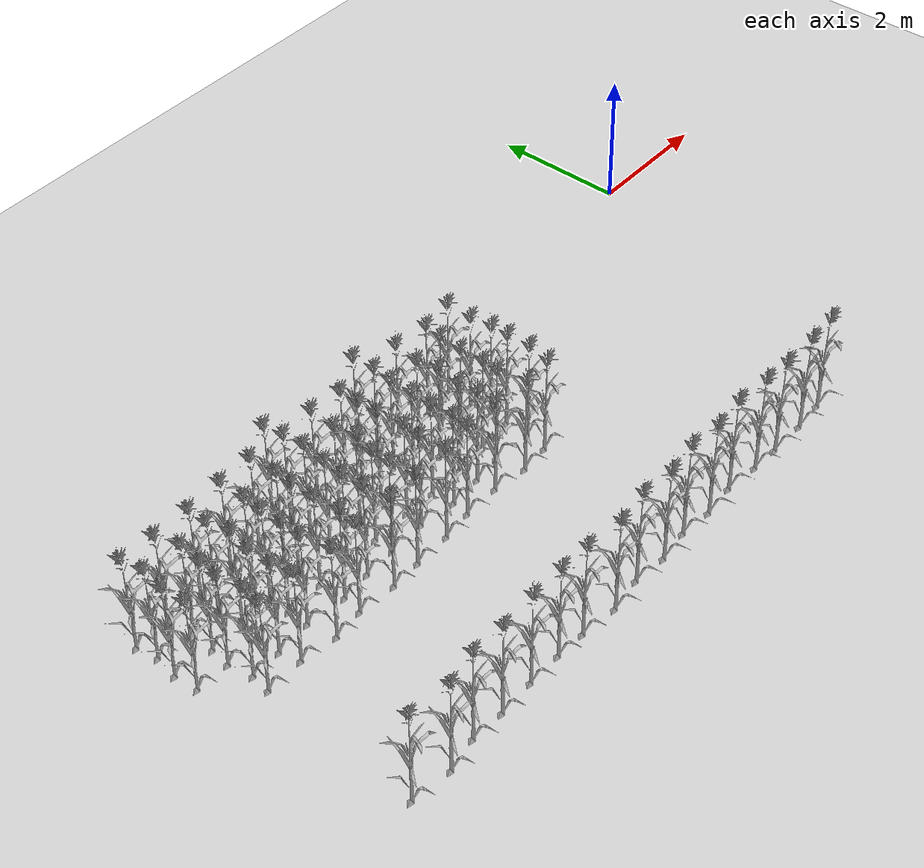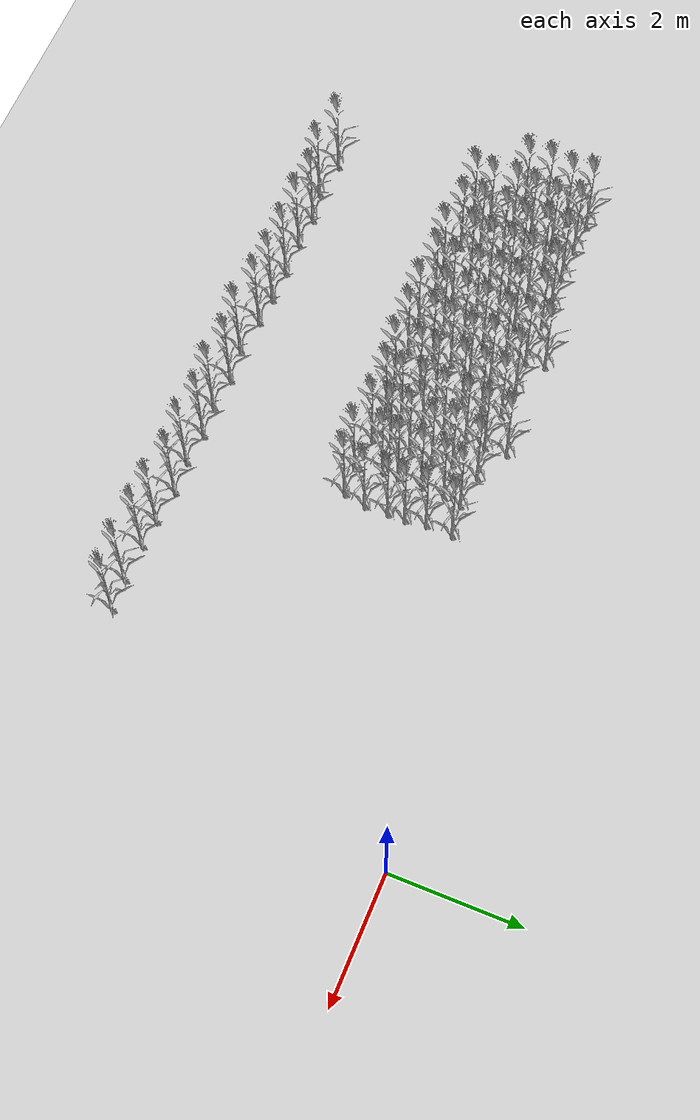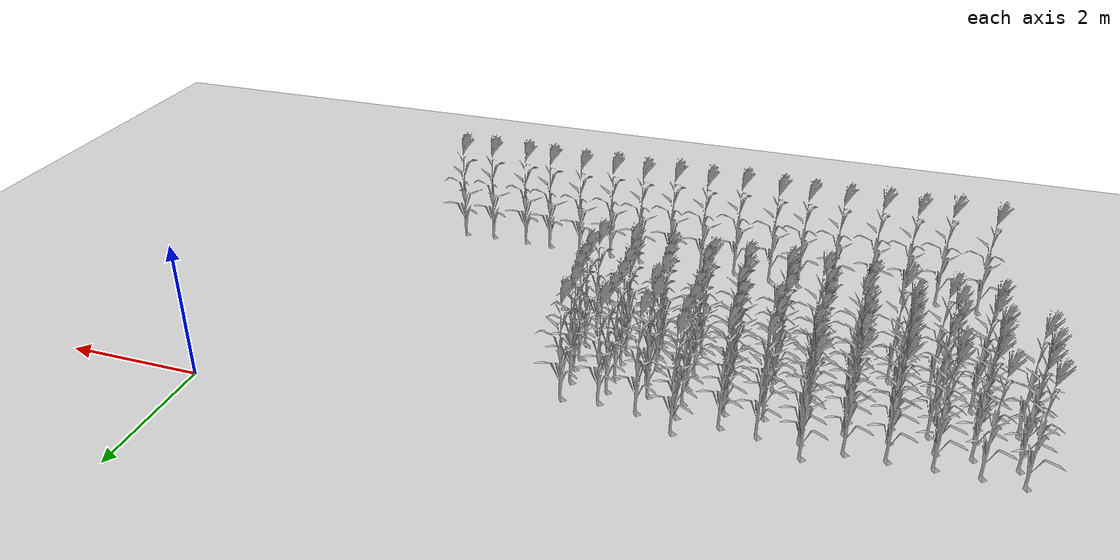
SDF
<sdf version="1.7">
 <world name="farmland_world">
  <model name="ground_plane">
   <static>1</static>
   <link name="link">
    <collision name="collision">
     <geometry><plane><normal>0 0 1</normal><size>40.0 40.0</size></plane></geometry>
     <surface><friction><ode><mu>100</mu><mu2>50</mu2></ode></friction></surface>
    </collision>
    <visual name="visual">
     <cast_shadows>0</cast_shadows>
     <geometry><plane><normal>0 0 1</normal><size>40.0 40.0</size></plane></geometry>
     <material>
      <script><uri>file://media/materials/scripts/gazebo.material</uri><name>Gazebo/Grey</name></script>
     </material>
    </visual>
   </link>
  </model>
  <model name="tree_3_2425">
   <static>1</static>
   <link name="link">
    <collision name="collision">
     <geometry><mesh><uri>model://Corn_low_poly/corn.obj</uri><scale>1 1 1</scale></mesh></geometry>
     <surface><friction><ode><mu>100</mu><mu2>50</mu2></ode></friction></surface>
    </collision>
    <visual name="visual">
     <geometry><mesh><uri>model://Corn_low_poly/corn.obj</uri><scale>1 1 1</scale></mesh></geometry>
    </visual>
   </link>
   <pose>-2.0586083341390737 -5.009973248332785 0 0 0 0</pose>
  </model>
  <model name="tree_3_2426">
   <static>1</static>
   <link name="link">
    <collision name="collision">
     <geometry><mesh><uri>model://Corn_low_poly/corn.obj</uri><scale>1 1 1</scale></mesh></geometry>
     <surface><friction><ode><mu>100</mu><mu2>50</mu2></ode></friction></surface>
    </collision>
    <visual name="visual">
     <geometry><mesh><uri>model://Corn_low_poly/corn.obj</uri><scale>1 1 1</scale></mesh></geometry>
    </visual>
   </link>
   <pose>-2.550739837157922 -5.044490293046341 0 0 0 0</pose>
  </model>
  <model name="tree_3_2427">
   <static>1</static>
   <link name="link">
    <collision name="collision">
     <geometry><mesh><uri>model://Corn_low_poly/corn.obj</uri><scale>1 1 1</scale></mesh></geometry>
     <surface><friction><ode><mu>100</mu><mu2>50</mu2></ode></friction></surface>
    </collision>
    <visual name="visual">
     <geometry><mesh><uri>model://Corn_low_poly/corn.obj</uri><scale>1 1 1</scale></mesh></geometry>
    </visual>
   </link>
   <pose>-3.1340845851057533 -5.038123824042474 0 0 0 0</pose>
  </model>
  <model name="tree_3_2428">
   <static>1</static>
   <link name="link">
    <collision name="collision">
     <geometry><mesh><uri>model://Corn_low_poly/corn.obj</uri><scale>1 1 1</scale></mesh></geometry>
     <surface><friction><ode><mu>100</mu><mu2>50</mu2></ode></friction></surface>
    </collision>
    <visual name="visual">
     <geometry><mesh><uri>model://Corn_low_poly/corn.obj</uri><scale>1 1 1</scale></mesh></geometry>
    </visual>
   </link>
   <pose>-3.5695222279849346 -5.016342844451209 0 0 0 0</pose>
  </model>
  <model name="tree_3_2429">
   <static>1</static>
   <link name="link">
    <collision name="collision">
     <geometry><mesh><uri>model://Corn_low_poly/corn.obj</uri><scale>1 1 1</scale></mesh></geometry>
     <surface><friction><ode><mu>100</mu><mu2>50</mu2></ode></friction></surface>
    </collision>
    <visual name="visual">
     <geometry><mesh><uri>model://Corn_low_poly/corn.obj</uri><scale>1 1 1</scale></mesh></geometry>
    </visual>
   </link>
   <pose>-4.105702485200127 -4.963977817209397 0 0 0 0</pose>
  </model>
  <model name="tree_3_2430">
   <static>1</static>
   <link name="link">
    <collision name="collision">
     <geometry><mesh><uri>model://Corn_low_poly/corn.obj</uri><scale>1 1 1</scale></mesh></geometry>
     <surface><friction><ode><mu>100</mu><mu2>50</mu2></ode></friction></surface>
    </collision>
    <visual name="visual">
     <geometry><mesh><uri>model://Corn_low_poly/corn.obj</uri><scale>1 1 1</scale></mesh></geometry>
    </visual>
   </link>
   <pose>-4.622667481711964 -5.010505086651507 0 0 0 0</pose>
  </model>
  <model name="tree_3_2431">
   <static>1</static>
   <link name="link">
    <collision name="collision">
     <geometry><mesh><uri>model://Corn_low_poly/corn.obj</uri><scale>1 1 1</scale></mesh></geometry>
     <surface><friction><ode><mu>100</mu><mu2>50</mu2></ode></friction></surface>
    </collision>
    <visual name="visual">
     <geometry><mesh><uri>model://Corn_low_poly/corn.obj</uri><scale>1 1 1</scale></mesh></geometry>
    </visual>
   </link>
   <pose>-5.124314284129708 -4.962499176442999 0 0 0 0</pose>
  </model>
  <model name="tree_3_2432">
   <static>1</static>
   <link name="link">
    <collision name="collision">
     <geometry><mesh><uri>model://Corn_low_poly/corn.obj</uri><scale>1 1 1</scale></mesh></geometry>
     <surface><friction><ode><mu>100</mu><mu2>50</mu2></ode></friction></surface>
    </collision>
    <visual name="visual">
     <geometry><mesh><uri>model://Corn_low_poly/corn.obj</uri><scale>1 1 1</scale></mesh></geometry>
    </visual>
   </link>
   <pose>-5.623227794631505 -5.022125303199364 0 0 0 0</pose>
  </model>
  <model name="tree_3_2433">
   <static>1</static>
   <link name="link">
    <collision name="collision">
     <geometry><mesh><uri>model://Corn_low_poly/corn.obj</uri><scale>1 1 1</scale></mesh></geometry>
     <surface><friction><ode><mu>100</mu><mu2>50</mu2></ode></friction></surface>
    </collision>
    <visual name="visual">
     <geometry><mesh><uri>model://Corn_low_poly/corn.obj</uri><scale>1 1 1</scale></mesh></geometry>
    </visual>
   </link>
   <pose>-6.141115361987646 -4.9750477683864895 0 0 0 0</pose>
  </model>
  <model name="tree_3_2434">
   <static>1</static>
   <link name="link">
    <collision name="collision">
     <geometry><mesh><uri>model://Corn_low_poly/corn.obj</uri><scale>1 1 1</scale></mesh></geometry>
     <surface><friction><ode><mu>100</mu><mu2>50</mu2></ode></friction></surface>
    </collision>
    <visual name="visual">
     <geometry><mesh><uri>model://Corn_low_poly/corn.obj</uri><scale>1 1 1</scale></mesh></geometry>
    </visual>
   </link>
   <pose>-6.669033276805173 -5.045881735833518 0 0 0 0</pose>
  </model>
  <model name="tree_3_2435">
   <static>1</static>
   <link name="link">
    <collision name="collision">
     <geometry><mesh><uri>model://Corn_low_poly/corn.obj</uri><scale>1 1 1</scale></mesh></geometry>
     <surface><friction><ode><mu>100</mu><mu2>50</mu2></ode></friction></surface>
    </collision>
    <visual name="visual">
     <geometry><mesh><uri>model://Corn_low_poly/corn.obj</uri><scale>1 1 1</scale></mesh></geometry>
    </visual>
   </link>
   <pose>-7.2357211204786465 -4.98104925834356 0 0 0 0</pose>
  </model>
  <model name="tree_3_2436">
   <static>1</static>
   <link name="link">
    <collision name="collision">
     <geometry><mesh><uri>model://Corn_low_poly/corn.obj</uri><scale>1 1 1</scale></mesh></geometry>
     <surface><friction><ode><mu>100</mu><mu2>50</mu2></ode></friction></surface>
    </collision>
    <visual name="visual">
     <geometry><mesh><uri>model://Corn_low_poly/corn.obj</uri><scale>1 1 1</scale></mesh></geometry>
    </visual>
   </link>
   <pose>-7.685568026569608 -4.957009878048248 0 0 0 0</pose>
  </model>
  <model name="tree_3_2437">
   <static>1</static>
   <link name="link">
    <collision name="collision">
     <geometry><mesh><uri>model://Corn_low_poly/corn.obj</uri><scale>1 1 1</scale></mesh></geometry>
     <surface><friction><ode><mu>100</mu><mu2>50</mu2></ode></friction></surface>
    </collision>
    <visual name="visual">
     <geometry><mesh><uri>model://Corn_low_poly/corn.obj</uri><scale>1 1 1</scale></mesh></geometry>
    </visual>
   </link>
   <pose>-8.206897508239647 -4.957161551358059 0 0 0 0</pose>
  </model>
  <model name="tree_3_2438">
   <static>1</static>
   <link name="link">
    <collision name="collision">
     <geometry><mesh><uri>model://Corn_low_poly/corn.obj</uri><scale>1 1 1</scale></mesh></geometry>
     <surface><friction><ode><mu>100</mu><mu2>50</mu2></ode></friction></surface>
    </collision>
    <visual name="visual">
     <geometry><mesh><uri>model://Corn_low_poly/corn.obj</uri><scale>1 1 1</scale></mesh></geometry>
    </visual>
   </link>
   <pose>-8.766601097878594 -4.977420156103931 0 0 0 0</pose>
  </model>
  <model name="tree_3_2439">
   <static>1</static>
   <link name="link">
    <collision name="collision">
     <geometry><mesh><uri>model://Corn_low_poly/corn.obj</uri><scale>1 1 1</scale></mesh></geometry>
     <surface><friction><ode><mu>100</mu><mu2>50</mu2></ode></friction></surface>
    </collision>
    <visual name="visual">
     <geometry><mesh><uri>model://Corn_low_poly/corn.obj</uri><scale>1 1 1</scale></mesh></geometry>
    </visual>
   </link>
   <pose>-9.262621262175138 -4.950004499388829 0 0 0 0</pose>
  </model>
  <model name="tree_3_2440">
   <static>1</static>
   <link name="link">
    <collision name="collision">
     <geometry><mesh><uri>model://Corn_low_poly/corn.obj</uri><scale>1 1 1</scale></mesh></geometry>
     <surface><friction><ode><mu>100</mu><mu2>50</mu2></ode></friction></surface>
    </collision>
    <visual name="visual">
     <geometry><mesh><uri>model://Corn_low_poly/corn.obj</uri><scale>1 1 1</scale></mesh></geometry>
    </visual>
   </link>
   <pose>-9.75364221327253 -5.04084159694156 0 0 0 0</pose>
  </model>
  <model name="tree_3_2441">
   <static>1</static>
   <link name="link">
    <collision name="collision">
     <geometry><mesh><uri>model://Corn_low_poly/corn.obj</uri><scale>1 1 1</scale></mesh></geometry>
     <surface><friction><ode><mu>100</mu><mu2>50</mu2></ode></friction></surface>
    </collision>
    <visual name="visual">
     <geometry><mesh><uri>model://Corn_low_poly/corn.obj</uri><scale>1 1 1</scale></mesh></geometry>
    </visual>
   </link>
   <pose>-10.34857824971049 -4.965488616825844 0 0 0 0</pose>
  </model>
  <model name="tree_3_2523">
   <static>1</static>
   <link name="link">
    <collision name="collision">
     <geometry><mesh><uri>model://Corn_low_poly/corn.obj</uri><scale>1 1 1</scale></mesh></geometry>
     <surface><friction><ode><mu>100</mu><mu2>50</mu2></ode></friction></surface>
    </collision>
    <visual name="visual">
     <geometry><mesh><uri>model://Corn_low_poly/corn.obj</uri><scale>1 1 1</scale></mesh></geometry>
    </visual>
   </link>
   <pose>-4.960950353666798 -1.9587976539364507 0 0 0 0</pose>
  </model>
  <model name="tree_3_2524">
   <static>1</static>
   <link name="link">
    <collision name="collision">
     <geometry><mesh><uri>model://Corn_low_poly/corn.obj</uri><scale>1 1 1</scale></mesh></geometry>
     <surface><friction><ode><mu>100</mu><mu2>50</mu2></ode></friction></surface>
    </collision>
    <visual name="visual">
     <geometry><mesh><uri>model://Corn_low_poly/corn.obj</uri><scale>1 1 1</scale></mesh></geometry>
    </visual>
   </link>
   <pose>-5.548777936164147 -2.031735033913933 0 0 0 0</pose>
  </model>
  <model name="tree_3_2525">
   <static>1</static>
   <link name="link">
    <collision name="collision">
     <geometry><mesh><uri>model://Corn_low_poly/corn.obj</uri><scale>1 1 1</scale></mesh></geometry>
     <surface><friction><ode><mu>100</mu><mu2>50</mu2></ode></friction></surface>
    </collision>
    <visual name="visual">
     <geometry><mesh><uri>model://Corn_low_poly/corn.obj</uri><scale>1 1 1</scale></mesh></geometry>
    </visual>
   </link>
   <pose>-6.053101093138669 -2.0475938958156243 0 0 0 0</pose>
  </model>
  <model name="tree_3_2526">
   <static>1</static>
   <link name="link">
    <collision name="collision">
     <geometry><mesh><uri>model://Corn_low_poly/corn.obj</uri><scale>1 1 1</scale></mesh></geometry>
     <surface><friction><ode><mu>100</mu><mu2>50</mu2></ode></friction></surface>
    </collision>
    <visual name="visual">
     <geometry><mesh><uri>model://Corn_low_poly/corn.obj</uri><scale>1 1 1</scale></mesh></geometry>
    </visual>
   </link>
   <pose>-6.581430613360766 -2.045547408359108 0 0 0 0</pose>
  </model>
  <model name="tree_3_2527">
   <static>1</static>
   <link name="link">
    <collision name="collision">
     <geometry><mesh><uri>model://Corn_low_poly/corn.obj</uri><scale>1 1 1</scale></mesh></geometry>
     <surface><friction><ode><mu>100</mu><mu2>50</mu2></ode></friction></surface>
    </collision>
    <visual name="visual">
     <geometry><mesh><uri>model://Corn_low_poly/corn.obj</uri><scale>1 1 1</scale></mesh></geometry>
    </visual>
   </link>
   <pose>-7.054353891102654 -2.019451760619216 0 0 0 0</pose>
  </model>
  <model name="tree_3_2528">
   <static>1</static>
   <link name="link">
    <collision name="collision">
     <geometry><mesh><uri>model://Corn_low_poly/corn.obj</uri><scale>1 1 1</scale></mesh></geometry>
     <surface><friction><ode><mu>100</mu><mu2>50</mu2></ode></friction></surface>
    </collision>
    <visual name="visual">
     <geometry><mesh><uri>model://Corn_low_poly/corn.obj</uri><scale>1 1 1</scale></mesh></geometry>
    </visual>
   </link>
   <pose>-7.650708832056682 -2.0178914827171517 0 0 0 0</pose>
  </model>
  <model name="tree_3_2529">
   <static>1</static>
   <link name="link">
    <collision name="collision">
     <geometry><mesh><uri>model://Corn_low_poly/corn.obj</uri><scale>1 1 1</scale></mesh></geometry>
     <surface><friction><ode><mu>100</mu><mu2>50</mu2></ode></friction></surface>
    </collision>
    <visual name="visual">
     <geometry><mesh><uri>model://Corn_low_poly/corn.obj</uri><scale>1 1 1</scale></mesh></geometry>
    </visual>
   </link>
   <pose>-8.158249538920707 -2.000505995676929 0 0 0 0</pose>
  </model>
  <model name="tree_3_2530">
   <static>1</static>
   <link name="link">
    <collision name="collision">
     <geometry><mesh><uri>model://Corn_low_poly/corn.obj</uri><scale>1 1 1</scale></mesh></geometry>
     <surface><friction><ode><mu>100</mu><mu2>50</mu2></ode></friction></surface>
    </collision>
    <visual name="visual">
     <geometry><mesh><uri>model://Corn_low_poly/corn.obj</uri><scale>1 1 1</scale></mesh></geometry>
    </visual>
   </link>
   <pose>-8.643395161052773 -1.9892140511070144 0 0 0 0</pose>
  </model>
  <model name="tree_3_2531">
   <static>1</static>
   <link name="link">
    <collision name="collision">
     <geometry><mesh><uri>model://Corn_low_poly/corn.obj</uri><scale>1 1 1</scale></mesh></geometry>
     <surface><friction><ode><mu>100</mu><mu2>50</mu2></ode></friction></surface>
    </collision>
    <visual name="visual">
     <geometry><mesh><uri>model://Corn_low_poly/corn.obj</uri><scale>1 1 1</scale></mesh></geometry>
    </visual>
   </link>
   <pose>-9.20108240498187 -1.9896631378876373 0 0 0 0</pose>
  </model>
  <model name="tree_3_2532">
   <static>1</static>
   <link name="link">
    <collision name="collision">
     <geometry><mesh><uri>model://Corn_low_poly/corn.obj</uri><scale>1 1 1</scale></mesh></geometry>
     <surface><friction><ode><mu>100</mu><mu2>50</mu2></ode></friction></surface>
    </collision>
    <visual name="visual">
     <geometry><mesh><uri>model://Corn_low_poly/corn.obj</uri><scale>1 1 1</scale></mesh></geometry>
    </visual>
   </link>
   <pose>-9.74475144455013 -1.9763483331833869 0 0 0 0</pose>
  </model>
  <model name="tree_3_2533">
   <static>1</static>
   <link name="link">
    <collision name="collision">
     <geometry><mesh><uri>model://Corn_low_poly/corn.obj</uri><scale>1 1 1</scale></mesh></geometry>
     <surface><friction><ode><mu>100</mu><mu2>50</mu2></ode></friction></surface>
    </collision>
    <visual name="visual">
     <geometry><mesh><uri>model://Corn_low_poly/corn.obj</uri><scale>1 1 1</scale></mesh></geometry>
    </visual>
   </link>
   <pose>-10.24988282463306 -1.9978741963152848 0 0 0 0</pose>
  </model>
  <model name="tree_3_2534">
   <static>1</static>
   <link name="link">
    <collision name="collision">
     <geometry><mesh><uri>model://Corn_low_poly/corn.obj</uri><scale>1 1 1</scale></mesh></geometry>
     <surface><friction><ode><mu>100</mu><mu2>50</mu2></ode></friction></surface>
    </collision>
    <visual name="visual">
     <geometry><mesh><uri>model://Corn_low_poly/corn.obj</uri><scale>1 1 1</scale></mesh></geometry>
    </visual>
   </link>
   <pose>-10.741355738978129 -1.9862273547312324 0 0 0 0</pose>
  </model>
  <model name="tree_3_2547">
   <static>1</static>
   <link name="link">
    <collision name="collision">
     <geometry><mesh><uri>model://Corn_low_poly/corn.obj</uri><scale>1 1 1</scale></mesh></geometry>
     <surface><friction><ode><mu>100</mu><mu2>50</mu2></ode></friction></surface>
    </collision>
    <visual name="visual">
     <geometry><mesh><uri>model://Corn_low_poly/corn.obj</uri><scale>1 1 1</scale></mesh></geometry>
    </visual>
   </link>
   <pose>-4.952897624842829 -2.316686795193839 0 0 0 0</pose>
  </model>
  <model name="tree_3_2548">
   <static>1</static>
   <link name="link">
    <collision name="collision">
     <geometry><mesh><uri>model://Corn_low_poly/corn.obj</uri><scale>1 1 1</scale></mesh></geometry>
     <surface><friction><ode><mu>100</mu><mu2>50</mu2></ode></friction></surface>
    </collision>
    <visual name="visual">
     <geometry><mesh><uri>model://Corn_low_poly/corn.obj</uri><scale>1 1 1</scale></mesh></geometry>
    </visual>
   </link>
   <pose>-5.566438396290747 -2.281230973018388 0 0 0 0</pose>
  </model>
  <model name="tree_3_2549">
   <static>1</static>
   <link name="link">
    <collision name="collision">
     <geometry><mesh><uri>model://Corn_low_poly/corn.obj</uri><scale>1 1 1</scale></mesh></geometry>
     <surface><friction><ode><mu>100</mu><mu2>50</mu2></ode></friction></surface>
    </collision>
    <visual name="visual">
     <geometry><mesh><uri>model://Corn_low_poly/corn.obj</uri><scale>1 1 1</scale></mesh></geometry>
    </visual>
   </link>
   <pose>-6.026618917587025 -2.3371508855942973 0 0 0 0</pose>
  </model>
  <model name="tree_3_2550">
   <static>1</static>
   <link name="link">
    <collision name="collision">
     <geometry><mesh><uri>model://Corn_low_poly/corn.obj</uri><scale>1 1 1</scale></mesh></geometry>
     <surface><friction><ode><mu>100</mu><mu2>50</mu2></ode></friction></surface>
    </collision>
    <visual name="visual">
     <geometry><mesh><uri>model://Corn_low_poly/corn.obj</uri><scale>1 1 1</scale></mesh></geometry>
    </visual>
   </link>
   <pose>-6.5408133101072945 -2.3704663006805 0 0 0 0</pose>
  </model>
  <model name="tree_3_2551">
   <static>1</static>
   <link name="link">
    <collision name="collision">
     <geometry><mesh><uri>model://Corn_low_poly/corn.obj</uri><scale>1 1 1</scale></mesh></geometry>
     <surface><friction><ode><mu>100</mu><mu2>50</mu2></ode></friction></surface>
    </collision>
    <visual name="visual">
     <geometry><mesh><uri>model://Corn_low_poly/corn.obj</uri><scale>1 1 1</scale></mesh></geometry>
    </visual>
   </link>
   <pose>-7.091961716748856 -2.294462835553418 0 0 0 0</pose>
  </model>
  <model name="tree_3_2552">
   <static>1</static>
   <link name="link">
    <collision name="collision">
     <geometry><mesh><uri>model://Corn_low_poly/corn.obj</uri><scale>1 1 1</scale></mesh></geometry>
     <surface><friction><ode><mu>100</mu><mu2>50</mu2></ode></friction></surface>
    </collision>
    <visual name="visual">
     <geometry><mesh><uri>model://Corn_low_poly/corn.obj</uri><scale>1 1 1</scale></mesh></geometry>
    </visual>
   </link>
   <pose>-7.657045072648217 -2.30859769597718 0 0 0 0</pose>
  </model>
  <model name="tree_3_2553">
   <static>1</static>
   <link name="link">
    <collision name="collision">
     <geometry><mesh><uri>model://Corn_low_poly/corn.obj</uri><scale>1 1 1</scale></mesh></geometry>
     <surface><friction><ode><mu>100</mu><mu2>50</mu2></ode></friction></surface>
    </collision>
    <visual name="visual">
     <geometry><mesh><uri>model://Corn_low_poly/corn.obj</uri><scale>1 1 1</scale></mesh></geometry>
    </visual>
   </link>
   <pose>-8.14824796701651 -2.326916446904539 0 0 0 0</pose>
  </model>
  <model name="tree_3_2554">
   <static>1</static>
   <link name="link">
    <collision name="collision">
     <geometry><mesh><uri>model://Corn_low_poly/corn.obj</uri><scale>1 1 1</scale></mesh></geometry>
     <surface><friction><ode><mu>100</mu><mu2>50</mu2></ode></friction></surface>
    </collision>
    <visual name="visual">
     <geometry><mesh><uri>model://Corn_low_poly/corn.obj</uri><scale>1 1 1</scale></mesh></geometry>
    </visual>
   </link>
   <pose>-8.607910578088973 -2.3696579351749274 0 0 0 0</pose>
  </model>
  <model name="tree_3_2555">
   <static>1</static>
   <link name="link">
    <collision name="collision">
     <geometry><mesh><uri>model://Corn_low_poly/corn.obj</uri><scale>1 1 1</scale></mesh></geometry>
     <surface><friction><ode><mu>100</mu><mu2>50</mu2></ode></friction></surface>
    </collision>
    <visual name="visual">
     <geometry><mesh><uri>model://Corn_low_poly/corn.obj</uri><scale>1 1 1</scale></mesh></geometry>
    </visual>
   </link>
   <pose>-9.202013834442612 -2.3009044187210947 0 0 0 0</pose>
  </model>
  <model name="tree_3_2556">
   <static>1</static>
   <link name="link">
    <collision name="collision">
     <geometry><mesh><uri>model://Corn_low_poly/corn.obj</uri><scale>1 1 1</scale></mesh></geometry>
     <surface><friction><ode><mu>100</mu><mu2>50</mu2></ode></friction></surface>
    </collision>
    <visual name="visual">
     <geometry><mesh><uri>model://Corn_low_poly/corn.obj</uri><scale>1 1 1</scale></mesh></geometry>
    </visual>
   </link>
   <pose>-9.735195246907894 -2.341943309348881 0 0 0 0</pose>
  </model>
  <model name="tree_3_2557">
   <static>1</static>
   <link name="link">
    <collision name="collision">
     <geometry><mesh><uri>model://Corn_low_poly/corn.obj</uri><scale>1 1 1</scale></mesh></geometry>
     <surface><friction><ode><mu>100</mu><mu2>50</mu2></ode></friction></surface>
    </collision>
    <visual name="visual">
     <geometry><mesh><uri>model://Corn_low_poly/corn.obj</uri><scale>1 1 1</scale></mesh></geometry>
    </visual>
   </link>
   <pose>-10.184889660994019 -2.3541168249147004 0 0 0 0</pose>
  </model>
  <model name="tree_3_2571">
   <static>1</static>
   <link name="link">
    <collision name="collision">
     <geometry><mesh><uri>model://Corn_low_poly/corn.obj</uri><scale>1 1 1</scale></mesh></geometry>
     <surface><friction><ode><mu>100</mu><mu2>50</mu2></ode></friction></surface>
    </collision>
    <visual name="visual">
     <geometry><mesh><uri>model://Corn_low_poly/corn.obj</uri><scale>1 1 1</scale></mesh></geometry>
    </visual>
   </link>
   <pose>-5.0273144611647345 -2.6596482863517323 0 0 0 0</pose>
  </model>
  <model name="tree_3_2572">
   <static>1</static>
   <link name="link">
    <collision name="collision">
     <geometry><mesh><uri>model://Corn_low_poly/corn.obj</uri><scale>1 1 1</scale></mesh></geometry>
     <surface><friction><ode><mu>100</mu><mu2>50</mu2></ode></friction></surface>
    </collision>
    <visual name="visual">
     <geometry><mesh><uri>model://Corn_low_poly/corn.obj</uri><scale>1 1 1</scale></mesh></geometry>
    </visual>
   </link>
   <pose>-5.483562302171038 -2.6932047045574854 0 0 0 0</pose>
  </model>
  <model name="tree_3_2573">
   <static>1</static>
   <link name="link">
    <collision name="collision">
     <geometry><mesh><uri>model://Corn_low_poly/corn.obj</uri><scale>1 1 1</scale></mesh></geometry>
     <surface><friction><ode><mu>100</mu><mu2>50</mu2></ode></friction></surface>
    </collision>
    <visual name="visual">
     <geometry><mesh><uri>model://Corn_low_poly/corn.obj</uri><scale>1 1 1</scale></mesh></geometry>
    </visual>
   </link>
   <pose>-6.012930459471779 -2.6255402716753133 0 0 0 0</pose>
  </model>
  <model name="tree_3_2574">
   <static>1</static>
   <link name="link">
    <collision name="collision">
     <geometry><mesh><uri>model://Corn_low_poly/corn.obj</uri><scale>1 1 1</scale></mesh></geometry>
     <surface><friction><ode><mu>100</mu><mu2>50</mu2></ode></friction></surface>
    </collision>
    <visual name="visual">
     <geometry><mesh><uri>model://Corn_low_poly/corn.obj</uri><scale>1 1 1</scale></mesh></geometry>
    </visual>
   </link>
   <pose>-6.576452443210215 -2.6302314381833365 0 0 0 0</pose>
  </model>
  <model name="tree_3_2575">
   <static>1</static>
   <link name="link">
    <collision name="collision">
     <geometry><mesh><uri>model://Corn_low_poly/corn.obj</uri><scale>1 1 1</scale></mesh></geometry>
     <surface><friction><ode><mu>100</mu><mu2>50</mu2></ode></friction></surface>
    </collision>
    <visual name="visual">
     <geometry><mesh><uri>model://Corn_low_poly/corn.obj</uri><scale>1 1 1</scale></mesh></geometry>
    </visual>
   </link>
   <pose>-7.047648939084872 -2.680665682531481 0 0 0 0</pose>
  </model>
  <model name="tree_3_2576">
   <static>1</static>
   <link name="link">
    <collision name="collision">
     <geometry><mesh><uri>model://Corn_low_poly/corn.obj</uri><scale>1 1 1</scale></mesh></geometry>
     <surface><friction><ode><mu>100</mu><mu2>50</mu2></ode></friction></surface>
    </collision>
    <visual name="visual">
     <geometry><mesh><uri>model://Corn_low_poly/corn.obj</uri><scale>1 1 1</scale></mesh></geometry>
    </visual>
   </link>
   <pose>-7.616321076765599 -2.691679288064732 0 0 0 0</pose>
  </model>
  <model name="tree_3_2577">
   <static>1</static>
   <link name="link">
    <collision name="collision">
     <geometry><mesh><uri>model://Corn_low_poly/corn.obj</uri><scale>1 1 1</scale></mesh></geometry>
     <surface><friction><ode><mu>100</mu><mu2>50</mu2></ode></friction></surface>
    </collision>
    <visual name="visual">
     <geometry><mesh><uri>model://Corn_low_poly/corn.obj</uri><scale>1 1 1</scale></mesh></geometry>
    </visual>
   </link>
   <pose>-8.082744238580535 -2.711324277870261 0 0 0 0</pose>
  </model>
  <model name="tree_3_2578">
   <static>1</static>
   <link name="link">
    <collision name="collision">
     <geometry><mesh><uri>model://Corn_low_poly/corn.obj</uri><scale>1 1 1</scale></mesh></geometry>
     <surface><friction><ode><mu>100</mu><mu2>50</mu2></ode></friction></surface>
    </collision>
    <visual name="visual">
     <geometry><mesh><uri>model://Corn_low_poly/corn.obj</uri><scale>1 1 1</scale></mesh></geometry>
    </visual>
   </link>
   <pose>-8.660539599678712 -2.6645110194438897 0 0 0 0</pose>
  </model>
  <model name="tree_3_2579">
   <static>1</static>
   <link name="link">
    <collision name="collision">
     <geometry><mesh><uri>model://Corn_low_poly/corn.obj</uri><scale>1 1 1</scale></mesh></geometry>
     <surface><friction><ode><mu>100</mu><mu2>50</mu2></ode></friction></surface>
    </collision>
    <visual name="visual">
     <geometry><mesh><uri>model://Corn_low_poly/corn.obj</uri><scale>1 1 1</scale></mesh></geometry>
    </visual>
   </link>
   <pose>-9.12596622578183 -2.7148125497555085 0 0 0 0</pose>
  </model>
  <model name="tree_3_2580">
   <static>1</static>
   <link name="link">
    <collision name="collision">
     <geometry><mesh><uri>model://Corn_low_poly/corn.obj</uri><scale>1 1 1</scale></mesh></geometry>
     <surface><friction><ode><mu>100</mu><mu2>50</mu2></ode></friction></surface>
    </collision>
    <visual name="visual">
     <geometry><mesh><uri>model://Corn_low_poly/corn.obj</uri><scale>1 1 1</scale></mesh></geometry>
    </visual>
   </link>
   <pose>-9.665086920132678 -2.634204420921476 0 0 0 0</pose>
  </model>
  <model name="tree_3_2581">
   <static>1</static>
   <link name="link">
    <collision name="collision">
     <geometry><mesh><uri>model://Corn_low_poly/corn.obj</uri><scale>1 1 1</scale></mesh></geometry>
     <surface><friction><ode><mu>100</mu><mu2>50</mu2></ode></friction></surface>
    </collision>
    <visual name="visual">
     <geometry><mesh><uri>model://Corn_low_poly/corn.obj</uri><scale>1 1 1</scale></mesh></geometry>
    </visual>
   </link>
   <pose>-10.230687929578204 -2.644424660969833 0 0 0 0</pose>
  </model>
  <model name="tree_3_2595">
   <static>1</static>
   <link name="link">
    <collision name="collision">
     <geometry><mesh><uri>model://Corn_low_poly/corn.obj</uri><scale>1 1 1</scale></mesh></geometry>
     <surface><friction><ode><mu>100</mu><mu2>50</mu2></ode></friction></surface>
    </collision>
    <visual name="visual">
     <geometry><mesh><uri>model://Corn_low_poly/corn.obj</uri><scale>1 1 1</scale></mesh></geometry>
    </visual>
   </link>
   <pose>-4.983368518296626 -0.9651611650827788 0 0 0 0</pose>
  </model>
  <model name="tree_3_2596">
   <static>1</static>
   <link name="link">
    <collision name="collision">
     <geometry><mesh><uri>model://Corn_low_poly/corn.obj</uri><scale>1 1 1</scale></mesh></geometry>
     <surface><friction><ode><mu>100</mu><mu2>50</mu2></ode></friction></surface>
    </collision>
    <visual name="visual">
     <geometry><mesh><uri>model://Corn_low_poly/corn.obj</uri><scale>1 1 1</scale></mesh></geometry>
    </visual>
   </link>
   <pose>-5.485650292536768 -1.0293881924933992 0 0 0 0</pose>
  </model>
  <model name="tree_3_2597">
   <static>1</static>
   <link name="link">
    <collision name="collision">
     <geometry><mesh><uri>model://Corn_low_poly/corn.obj</uri><scale>1 1 1</scale></mesh></geometry>
     <surface><friction><ode><mu>100</mu><mu2>50</mu2></ode></friction></surface>
    </collision>
    <visual name="visual">
     <geometry><mesh><uri>model://Corn_low_poly/corn.obj</uri><scale>1 1 1</scale></mesh></geometry>
    </visual>
   </link>
   <pose>-6.009061966072478 -0.9695273937191857 0 0 0 0</pose>
  </model>
  <model name="tree_3_2598">
   <static>1</static>
   <link name="link">
    <collision name="collision">
     <geometry><mesh><uri>model://Corn_low_poly/corn.obj</uri><scale>1 1 1</scale></mesh></geometry>
     <surface><friction><ode><mu>100</mu><mu2>50</mu2></ode></friction></surface>
    </collision>
    <visual name="visual">
     <geometry><mesh><uri>model://Corn_low_poly/corn.obj</uri><scale>1 1 1</scale></mesh></geometry>
    </visual>
   </link>
   <pose>-6.518534172517782 -1.0446141604205896 0 0 0 0</pose>
  </model>
  <model name="tree_3_2599">
   <static>1</static>
   <link name="link">
    <collision name="collision">
     <geometry><mesh><uri>model://Corn_low_poly/corn.obj</uri><scale>1 1 1</scale></mesh></geometry>
     <surface><friction><ode><mu>100</mu><mu2>50</mu2></ode></friction></surface>
    </collision>
    <visual name="visual">
     <geometry><mesh><uri>model://Corn_low_poly/corn.obj</uri><scale>1 1 1</scale></mesh></geometry>
    </visual>
   </link>
   <pose>-7.096844497086078 -1.0028992195332287 0 0 0 0</pose>
  </model>
  <model name="tree_3_2600">
   <static>1</static>
   <link name="link">
    <collision name="collision">
     <geometry><mesh><uri>model://Corn_low_poly/corn.obj</uri><scale>1 1 1</scale></mesh></geometry>
     <surface><friction><ode><mu>100</mu><mu2>50</mu2></ode></friction></surface>
    </collision>
    <visual name="visual">
     <geometry><mesh><uri>model://Corn_low_poly/corn.obj</uri><scale>1 1 1</scale></mesh></geometry>
    </visual>
   </link>
   <pose>-7.579344971230424 -0.9557880329275382 0 0 0 0</pose>
  </model>
  <model name="tree_3_2601">
   <static>1</static>
   <link name="link">
    <collision name="collision">
     <geometry><mesh><uri>model://Corn_low_poly/corn.obj</uri><scale>1 1 1</scale></mesh></geometry>
     <surface><friction><ode><mu>100</mu><mu2>50</mu2></ode></friction></surface>
    </collision>
    <visual name="visual">
     <geometry><mesh><uri>model://Corn_low_poly/corn.obj</uri><scale>1 1 1</scale></mesh></geometry>
    </visual>
   </link>
   <pose>-8.109348710817134 -0.9917971017732468 0 0 0 0</pose>
  </model>
  <model name="tree_3_2602">
   <static>1</static>
   <link name="link">
    <collision name="collision">
     <geometry><mesh><uri>model://Corn_low_poly/corn.obj</uri><scale>1 1 1</scale></mesh></geometry>
     <surface><friction><ode><mu>100</mu><mu2>50</mu2></ode></friction></surface>
    </collision>
    <visual name="visual">
     <geometry><mesh><uri>model://Corn_low_poly/corn.obj</uri><scale>1 1 1</scale></mesh></geometry>
    </visual>
   </link>
   <pose>-8.652302085796697 -0.9555529205028562 0 0 0 0</pose>
  </model>
  <model name="tree_3_2603">
   <static>1</static>
   <link name="link">
    <collision name="collision">
     <geometry><mesh><uri>model://Corn_low_poly/corn.obj</uri><scale>1 1 1</scale></mesh></geometry>
     <surface><friction><ode><mu>100</mu><mu2>50</mu2></ode></friction></surface>
    </collision>
    <visual name="visual">
     <geometry><mesh><uri>model://Corn_low_poly/corn.obj</uri><scale>1 1 1</scale></mesh></geometry>
    </visual>
   </link>
   <pose>-9.162994536165318 -0.9712962309210074 0 0 0 0</pose>
  </model>
  <model name="tree_3_2604">
   <static>1</static>
   <link name="link">
    <collision name="collision">
     <geometry><mesh><uri>model://Corn_low_poly/corn.obj</uri><scale>1 1 1</scale></mesh></geometry>
     <surface><friction><ode><mu>100</mu><mu2>50</mu2></ode></friction></surface>
    </collision>
    <visual name="visual">
     <geometry><mesh><uri>model://Corn_low_poly/corn.obj</uri><scale>1 1 1</scale></mesh></geometry>
    </visual>
   </link>
   <pose>-9.71737651699541 -1.0026118847616883 0 0 0 0</pose>
  </model>
  <model name="tree_3_2605">
   <static>1</static>
   <link name="link">
    <collision name="collision">
     <geometry><mesh><uri>model://Corn_low_poly/corn.obj</uri><scale>1 1 1</scale></mesh></geometry>
     <surface><friction><ode><mu>100</mu><mu2>50</mu2></ode></friction></surface>
    </collision>
    <visual name="visual">
     <geometry><mesh><uri>model://Corn_low_poly/corn.obj</uri><scale>1 1 1</scale></mesh></geometry>
    </visual>
   </link>
   <pose>-10.261844983811134 -0.9976529563674785 0 0 0 0</pose>
  </model>
  <model name="tree_3_2606">
   <static>1</static>
   <link name="link">
    <collision name="collision">
     <geometry><mesh><uri>model://Corn_low_poly/corn.obj</uri><scale>1 1 1</scale></mesh></geometry>
     <surface><friction><ode><mu>100</mu><mu2>50</mu2></ode></friction></surface>
    </collision>
    <visual name="visual">
     <geometry><mesh><uri>model://Corn_low_poly/corn.obj</uri><scale>1 1 1</scale></mesh></geometry>
    </visual>
   </link>
   <pose>-10.760426307092166 -0.9728419221034277 0 0 0 0</pose>
  </model>
  <model name="tree_3_2619">
   <static>1</static>
   <link name="link">
    <collision name="collision">
     <geometry><mesh><uri>model://Corn_low_poly/corn.obj</uri><scale>1 1 1</scale></mesh></geometry>
     <surface><friction><ode><mu>100</mu><mu2>50</mu2></ode></friction></surface>
    </collision>
    <visual name="visual">
     <geometry><mesh><uri>model://Corn_low_poly/corn.obj</uri><scale>1 1 1</scale></mesh></geometry>
    </visual>
   </link>
   <pose>-5.002958386980679 -1.3744852513898016 0 0 0 0</pose>
  </model>
  <model name="tree_3_2620">
   <static>1</static>
   <link name="link">
    <collision name="collision">
     <geometry><mesh><uri>model://Corn_low_poly/corn.obj</uri><scale>1 1 1</scale></mesh></geometry>
     <surface><friction><ode><mu>100</mu><mu2>50</mu2></ode></friction></surface>
    </collision>
    <visual name="visual">
     <geometry><mesh><uri>model://Corn_low_poly/corn.obj</uri><scale>1 1 1</scale></mesh></geometry>
    </visual>
   </link>
   <pose>-5.528324875445681 -1.3065069589554574 0 0 0 0</pose>
  </model>
  <model name="tree_3_2621">
   <static>1</static>
   <link name="link">
    <collision name="collision">
     <geometry><mesh><uri>model://Corn_low_poly/corn.obj</uri><scale>1 1 1</scale></mesh></geometry>
     <surface><friction><ode><mu>100</mu><mu2>50</mu2></ode></friction></surface>
    </collision>
    <visual name="visual">
     <geometry><mesh><uri>model://Corn_low_poly/corn.obj</uri><scale>1 1 1</scale></mesh></geometry>
    </visual>
   </link>
   <pose>-6.076465844037059 -1.3782372543132215 0 0 0 0</pose>
  </model>
  <model name="tree_3_2622">
   <static>1</static>
   <link name="link">
    <collision name="collision">
     <geometry><mesh><uri>model://Corn_low_poly/corn.obj</uri><scale>1 1 1</scale></mesh></geometry>
     <surface><friction><ode><mu>100</mu><mu2>50</mu2></ode></friction></surface>
    </collision>
    <visual name="visual">
     <geometry><mesh><uri>model://Corn_low_poly/corn.obj</uri><scale>1 1 1</scale></mesh></geometry>
    </visual>
   </link>
   <pose>-6.5519989117068045 -1.3546902881507665 0 0 0 0</pose>
  </model>
  <model name="tree_3_2623">
   <static>1</static>
   <link name="link">
    <collision name="collision">
     <geometry><mesh><uri>model://Corn_low_poly/corn.obj</uri><scale>1 1 1</scale></mesh></geometry>
     <surface><friction><ode><mu>100</mu><mu2>50</mu2></ode></friction></surface>
    </collision>
    <visual name="visual">
     <geometry><mesh><uri>model://Corn_low_poly/corn.obj</uri><scale>1 1 1</scale></mesh></geometry>
    </visual>
   </link>
   <pose>-7.109465885260741 -1.3162650836397158 0 0 0 0</pose>
  </model>
  <model name="tree_3_2624">
   <static>1</static>
   <link name="link">
    <collision name="collision">
     <geometry><mesh><uri>model://Corn_low_poly/corn.obj</uri><scale>1 1 1</scale></mesh></geometry>
     <surface><friction><ode><mu>100</mu><mu2>50</mu2></ode></friction></surface>
    </collision>
    <visual name="visual">
     <geometry><mesh><uri>model://Corn_low_poly/corn.obj</uri><scale>1 1 1</scale></mesh></geometry>
    </visual>
   </link>
   <pose>-7.614292862509248 -1.3705291171190497 0 0 0 0</pose>
  </model>
  <model name="tree_3_2625">
   <static>1</static>
   <link name="link">
    <collision name="collision">
     <geometry><mesh><uri>model://Corn_low_poly/corn.obj</uri><scale>1 1 1</scale></mesh></geometry>
     <surface><friction><ode><mu>100</mu><mu2>50</mu2></ode></friction></surface>
    </collision>
    <visual name="visual">
     <geometry><mesh><uri>model://Corn_low_poly/corn.obj</uri><scale>1 1 1</scale></mesh></geometry>
    </visual>
   </link>
   <pose>-8.084540078326304 -1.3012963366960342 0 0 0 0</pose>
  </model>
  <model name="tree_3_2626">
   <static>1</static>
   <link name="link">
    <collision name="collision">
     <geometry><mesh><uri>model://Corn_low_poly/corn.obj</uri><scale>1 1 1</scale></mesh></geometry>
     <surface><friction><ode><mu>100</mu><mu2>50</mu2></ode></friction></surface>
    </collision>
    <visual name="visual">
     <geometry><mesh><uri>model://Corn_low_poly/corn.obj</uri><scale>1 1 1</scale></mesh></geometry>
    </visual>
   </link>
   <pose>-8.625694830383694 -1.3629760808997013 0 0 0 0</pose>
  </model>
  <model name="tree_3_2627">
   <static>1</static>
   <link name="link">
    <collision name="collision">
     <geometry><mesh><uri>model://Corn_low_poly/corn.obj</uri><scale>1 1 1</scale></mesh></geometry>
     <surface><friction><ode><mu>100</mu><mu2>50</mu2></ode></friction></surface>
    </collision>
    <visual name="visual">
     <geometry><mesh><uri>model://Corn_low_poly/corn.obj</uri><scale>1 1 1</scale></mesh></geometry>
    </visual>
   </link>
   <pose>-9.172528211105563 -1.3598427572772878 0 0 0 0</pose>
  </model>
  <model name="tree_3_2628">
   <static>1</static>
   <link name="link">
    <collision name="collision">
     <geometry><mesh><uri>model://Corn_low_poly/corn.obj</uri><scale>1 1 1</scale></mesh></geometry>
     <surface><friction><ode><mu>100</mu><mu2>50</mu2></ode></friction></surface>
    </collision>
    <visual name="visual">
     <geometry><mesh><uri>model://Corn_low_poly/corn.obj</uri><scale>1 1 1</scale></mesh></geometry>
    </visual>
   </link>
   <pose>-9.727050832695502 -1.310361031754947 0 0 0 0</pose>
  </model>
  <model name="tree_3_2629">
   <static>1</static>
   <link name="link">
    <collision name="collision">
     <geometry><mesh><uri>model://Corn_low_poly/corn.obj</uri><scale>1 1 1</scale></mesh></geometry>
     <surface><friction><ode><mu>100</mu><mu2>50</mu2></ode></friction></surface>
    </collision>
    <visual name="visual">
     <geometry><mesh><uri>model://Corn_low_poly/corn.obj</uri><scale>1 1 1</scale></mesh></geometry>
    </visual>
   </link>
   <pose>-10.170201008791574 -1.3370080910079574 0 0 0 0</pose>
  </model>
  <model name="tree_3_2630">
   <static>1</static>
   <link name="link">
    <collision name="collision">
     <geometry><mesh><uri>model://Corn_low_poly/corn.obj</uri><scale>1 1 1</scale></mesh></geometry>
     <surface><friction><ode><mu>100</mu><mu2>50</mu2></ode></friction></surface>
    </collision>
    <visual name="visual">
     <geometry><mesh><uri>model://Corn_low_poly/corn.obj</uri><scale>1 1 1</scale></mesh></geometry>
    </visual>
   </link>
   <pose>-10.704751138500233 -1.2859345546384762 0 0 0 0</pose>
  </model>
  <model name="tree_3_2643">
   <static>1</static>
   <link name="link">
    <collision name="collision">
     <geometry><mesh><uri>model://Corn_low_poly/corn.obj</uri><scale>1 1 1</scale></mesh></geometry>
     <surface><friction><ode><mu>100</mu><mu2>50</mu2></ode></friction></surface>
    </collision>
    <visual name="visual">
     <geometry><mesh><uri>model://Corn_low_poly/corn.obj</uri><scale>1 1 1</scale></mesh></geometry>
    </visual>
   </link>
   <pose>-4.9611450184731645 -1.6913506068871393 0 0 0 0</pose>
  </model>
  <model name="tree_3_2644">
   <static>1</static>
   <link name="link">
    <collision name="collision">
     <geometry><mesh><uri>model://Corn_low_poly/corn.obj</uri><scale>1 1 1</scale></mesh></geometry>
     <surface><friction><ode><mu>100</mu><mu2>50</mu2></ode></friction></surface>
    </collision>
    <visual name="visual">
     <geometry><mesh><uri>model://Corn_low_poly/corn.obj</uri><scale>1 1 1</scale></mesh></geometry>
    </visual>
   </link>
   <pose>-5.555258549151162 -1.6636428771720513 0 0 0 0</pose>
  </model>
  <model name="tree_3_2645">
   <static>1</static>
   <link name="link">
    <collision name="collision">
     <geometry><mesh><uri>model://Corn_low_poly/corn.obj</uri><scale>1 1 1</scale></mesh></geometry>
     <surface><friction><ode><mu>100</mu><mu2>50</mu2></ode></friction></surface>
    </collision>
    <visual name="visual">
     <geometry><mesh><uri>model://Corn_low_poly/corn.obj</uri><scale>1 1 1</scale></mesh></geometry>
    </visual>
   </link>
   <pose>-5.994396938570484 -1.6700188274735104 0 0 0 0</pose>
  </model>
  <model name="tree_3_2646">
   <static>1</static>
   <link name="link">
    <collision name="collision">
     <geometry><mesh><uri>model://Corn_low_poly/corn.obj</uri><scale>1 1 1</scale></mesh></geometry>
     <surface><friction><ode><mu>100</mu><mu2>50</mu2></ode></friction></surface>
    </collision>
    <visual name="visual">
     <geometry><mesh><uri>model://Corn_low_poly/corn.obj</uri><scale>1 1 1</scale></mesh></geometry>
    </visual>
   </link>
   <pose>-6.554164264931086 -1.7008727064769602 0 0 0 0</pose>
  </model>
  <model name="tree_3_2647">
   <static>1</static>
   <link name="link">
    <collision name="collision">
     <geometry><mesh><uri>model://Corn_low_poly/corn.obj</uri><scale>1 1 1</scale></mesh></geometry>
     <surface><friction><ode><mu>100</mu><mu2>50</mu2></ode></friction></surface>
    </collision>
    <visual name="visual">
     <geometry><mesh><uri>model://Corn_low_poly/corn.obj</uri><scale>1 1 1</scale></mesh></geometry>
    </visual>
   </link>
   <pose>-7.1053427314390385 -1.6243147365003665 0 0 0 0</pose>
  </model>
  <model name="tree_3_2648">
   <static>1</static>
   <link name="link">
    <collision name="collision">
     <geometry><mesh><uri>model://Corn_low_poly/corn.obj</uri><scale>1 1 1</scale></mesh></geometry>
     <surface><friction><ode><mu>100</mu><mu2>50</mu2></ode></friction></surface>
    </collision>
    <visual name="visual">
     <geometry><mesh><uri>model://Corn_low_poly/corn.obj</uri><scale>1 1 1</scale></mesh></geometry>
    </visual>
   </link>
   <pose>-7.563312173938572 -1.6787253222776188 0 0 0 0</pose>
  </model>
  <model name="tree_3_2649">
   <static>1</static>
   <link name="link">
    <collision name="collision">
     <geometry><mesh><uri>model://Corn_low_poly/corn.obj</uri><scale>1 1 1</scale></mesh></geometry>
     <surface><friction><ode><mu>100</mu><mu2>50</mu2></ode></friction></surface>
    </collision>
    <visual name="visual">
     <geometry><mesh><uri>model://Corn_low_poly/corn.obj</uri><scale>1 1 1</scale></mesh></geometry>
    </visual>
   </link>
   <pose>-8.131549446311393 -1.6858498841695748 0 0 0 0</pose>
  </model>
  <model name="tree_3_2650">
   <static>1</static>
   <link name="link">
    <collision name="collision">
     <geometry><mesh><uri>model://Corn_low_poly/corn.obj</uri><scale>1 1 1</scale></mesh></geometry>
     <surface><friction><ode><mu>100</mu><mu2>50</mu2></ode></friction></surface>
    </collision>
    <visual name="visual">
     <geometry><mesh><uri>model://Corn_low_poly/corn.obj</uri><scale>1 1 1</scale></mesh></geometry>
    </visual>
   </link>
   <pose>-8.657443199830578 -1.6436195537172222 0 0 0 0</pose>
  </model>
  <model name="tree_3_2651">
   <static>1</static>
   <link name="link">
    <collision name="collision">
     <geometry><mesh><uri>model://Corn_low_poly/corn.obj</uri><scale>1 1 1</scale></mesh></geometry>
     <surface><friction><ode><mu>100</mu><mu2>50</mu2></ode></friction></surface>
    </collision>
    <visual name="visual">
     <geometry><mesh><uri>model://Corn_low_poly/corn.obj</uri><scale>1 1 1</scale></mesh></geometry>
    </visual>
   </link>
   <pose>-9.19545296184278 -1.6729733165381193 0 0 0 0</pose>
  </model>
  <model name="tree_3_2652">
   <static>1</static>
   <link name="link">
    <collision name="collision">
     <geometry><mesh><uri>model://Corn_low_poly/corn.obj</uri><scale>1 1 1</scale></mesh></geometry>
     <surface><friction><ode><mu>100</mu><mu2>50</mu2></ode></friction></surface>
    </collision>
    <visual name="visual">
     <geometry><mesh><uri>model://Corn_low_poly/corn.obj</uri><scale>1 1 1</scale></mesh></geometry>
    </visual>
   </link>
   <pose>-9.64679825073846 -1.6331548834278131 0 0 0 0</pose>
  </model>
  <model name="tree_3_2653">
   <static>1</static>
   <link name="link">
    <collision name="collision">
     <geometry><mesh><uri>model://Corn_low_poly/corn.obj</uri><scale>1 1 1</scale></mesh></geometry>
     <surface><friction><ode><mu>100</mu><mu2>50</mu2></ode></friction></surface>
    </collision>
    <visual name="visual">
     <geometry><mesh><uri>model://Corn_low_poly/corn.obj</uri><scale>1 1 1</scale></mesh></geometry>
    </visual>
   </link>
   <pose>-10.208987044563548 -1.698056288731928 0 0 0 0</pose>
  </model>
  <model name="tree_3_2654">
   <static>1</static>
   <link name="link">
    <collision name="collision">
     <geometry><mesh><uri>model://Corn_low_poly/corn.obj</uri><scale>1 1 1</scale></mesh></geometry>
     <surface><friction><ode><mu>100</mu><mu2>50</mu2></ode></friction></surface>
    </collision>
    <visual name="visual">
     <geometry><mesh><uri>model://Corn_low_poly/corn.obj</uri><scale>1 1 1</scale></mesh></geometry>
    </visual>
   </link>
   <pose>-10.767564688876586 -1.6362087189012318 0 0 0 0</pose>
  </model>
  <model name="tree_3_2718">
   <static>1</static>
   <link name="link">
    <collision name="collision">
     <geometry><mesh><uri>model://Corn_low_poly/corn.obj</uri><scale>1 1 1</scale></mesh></geometry>
     <surface><friction><ode><mu>100</mu><mu2>50</mu2></ode></friction></surface>
    </collision>
    <visual name="visual">
     <geometry><mesh><uri>model://Corn_low_poly/corn.obj</uri><scale>1 1 1</scale></mesh></geometry>
    </visual>
   </link>
   <pose>-6.530967391910363 -0.7031230662531375 0 0 0 0</pose>
  </model>
  <model name="tree_3_2721">
   <static>1</static>
   <link name="link">
    <collision name="collision">
     <geometry><mesh><uri>model://Corn_low_poly/corn.obj</uri><scale>1 1 1</scale></mesh></geometry>
     <surface><friction><ode><mu>100</mu><mu2>50</mu2></ode></friction></surface>
    </collision>
    <visual name="visual">
     <geometry><mesh><uri>model://Corn_low_poly/corn.obj</uri><scale>1 1 1</scale></mesh></geometry>
    </visual>
   </link>
   <pose>-8.149221168321844 -0.699368310464285 0 0 0 0</pose>
  </model>
 </world>
</sdf>
